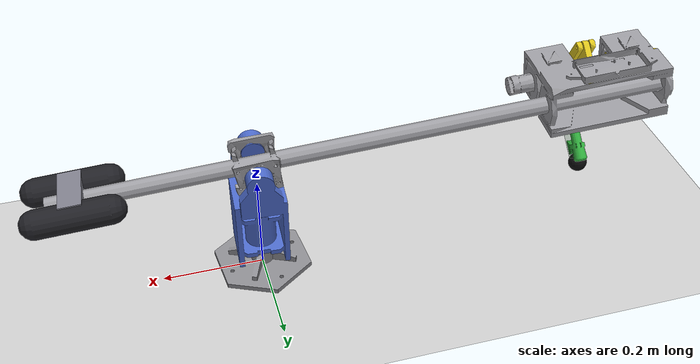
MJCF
<mujoco model="hoppy_cad_physics">
    <compiler angle="radian" meshdir="../assets/meshes/hoppy_official_urdf"/>

    <option gravity="0 0 -9.81" timestep="0.001" integrator="RK4"
            solver="Newton" iterations="50" tolerance="1e-8"/>

    <default>
        <geom type="mesh" contype="0" conaffinity="0" group="1" density="0"/>
    </default>

    <asset>
        <mesh name="base_link" file="base_link.STL"/>
        <mesh name="Link1" file="Link1.STL"/>
        <mesh name="Link2" file="Link2.STL"/>
        <mesh name="Link3" file="Link3.STL"/>
        <mesh name="Link4" file="Link4.STL"/>
    </asset>

    <worldbody>
        <light pos="0.4 -1.5 2.5" dir="-0.2 1 -1.6"/>
        <camera name="main_camera" pos="-0.35 -1.7 0.55" xyaxes="1 0 0 0 0.35 1"/>

        <geom name="floor" type="plane" size="2 2 0.1" rgba="0.8 0.8 0.8 1"
              contype="1" conaffinity="1"
              friction="1.5 0.02 0.001" solref="0.01 1" solimp="0.95 0.99 0.001"/>

        <body name="base_link">
            <inertial pos="0 0 0.0166702" quat="0.5 0.5 -0.5 0.5" mass="0.384125"
                      diaginertia="0.0011789 0.000672971 0.000672971"/>
            <geom mesh="base_link" rgba="0.55 0.55 0.57 1"/>

            <body name="Link1" pos="0 0 0.04">
                <inertial pos="1.19035e-06 -7.23296e-08 0.110977"
                          quat="0.999539 -3.72317e-07 -1.22626e-05 -0.0303481"
                          mass="1.05189" diaginertia="0.0015755 0.00119525 0.000930447"/>
                <!-- Continuous yaw: the gantry spins freely around the base
                     (no hard stop on the real robot nor in the MATLAB sim). -->
                <joint name="joint1" pos="0 0 0" axis="0 0 1"
                       damping="0.02" armature="0.01"/>
                <geom mesh="Link1" rgba="0.30 0.42 0.80 1"/>

                <body name="Link2" pos="-0.00227444 -0.037431 0.21"
                      quat="0.705252 0.707058 0.00831865 -0.0511876">
                    <inertial pos="0.06075 0.00079 -0.00437"
                              quat="0.500001 0.500001 0.499999 0.499999"
                              mass="3.87654" diaginertia="0.13146 0.13021 0.00536"/>
                    <joint name="joint2" pos="0 0 0" axis="0 0 1" range="-0.5 0.5"
                           damping="0.12" armature="0.01"/>
                    <geom mesh="Link2" rgba="0.62 0.62 0.64 1"/>

                    <!-- Counterweight, visual only (its mass is folded into the
                         Link2 inertia). Two weights clamped to the boom near its
                         end, matching the real robot. -->
                    <geom name="cw_clamp" type="box" pos="0.34 0 -0.038" size="0.022 0.03 0.05"
                          contype="0" conaffinity="0" density="0" rgba="0.50 0.50 0.55 1"/>
                    <geom name="cw_1" type="capsule" fromto="0.27 0 0.007 0.41 0 0.007"
                          size="0.028" contype="0" conaffinity="0" density="0" rgba="0.13 0.13 0.15 1"/>
                    <geom name="cw_2" type="capsule" fromto="0.27 0 -0.083 0.41 0 -0.083"
                          size="0.028" contype="0" conaffinity="0" density="0" rgba="0.13 0.13 0.15 1"/>

                    <body name="Link3" pos="-0.6585 0 0.0425"
                          quat="0.677009 -0.204104 -0.677009 0.204104">
                        <inertial pos="0.00864428 -0.0327981 0.0561207"
                                  quat="0.511267 0.498647 -0.497438 0.492456"
                                  mass="0.332207" diaginertia="0.000345397 0.000299821 7.12146e-05"/>
                        <joint name="joint3" pos="0 0 0" axis="0 0 1" range="-0.5 0.9"
                               damping="0.140" armature="0.00507"/>
                        <geom mesh="Link3" rgba="0.90 0.80 0.12 1"/>

                        <body name="Link4" pos="0 -0.1 0.0095"
                              quat="0 -0.288647 -0.957436 0">
                            <inertial pos="-0.0162703 -0.0747425 -0.0260399"
                                      quat="0.285014 0.647037 -0.285746 0.646884"
                                      mass="0.172793" diaginertia="0.000170791 0.000165707 3.2109e-05"/>
                            <joint name="joint4" pos="0 0 0" axis="0 0 -1" range="-1.3 0.4"
                                   damping="0.160" armature="0.00581"
                                   stiffness="1.0" springref="0"/>
                            <geom mesh="Link4" rgba="0.20 0.70 0.25 1"/>
                            <geom name="lower_leg_collision" type="capsule"
                                  fromto="-0.0896 0.0163 -0.0072 0.0240 -0.1820 -0.0274" size="0.015"
                                  contype="1" conaffinity="1"
                                  friction="1.5 0.02 0.001" solref="0.01 1" solimp="0.95 0.99 0.001"
                                  rgba="0.05 0.35 0.08 0.18"/>

                            <geom name="foot" type="sphere" pos="0.0240 -0.1820 -0.0274"
                                  size="0.02" contype="1" conaffinity="1"
                                  friction="1.5 0.02 0.001" solref="0.01 1" solimp="0.95 0.99 0.001"
                                  rgba="0.05 0.05 0.05 1"/>
                            <site name="foot_site" pos="0.0240 -0.1820 -0.0274" size="0.01" rgba="1 0 0 1"/>
                        </body>
                    </body>
                </body>
            </body>
        </body>
    </worldbody>

    <actuator>
        <motor name="hip_motor" joint="joint3" gear="1" ctrllimited="true" ctrlrange="-12.2 12.2"/>
        <motor name="knee_motor" joint="joint4" gear="1" ctrllimited="true" ctrlrange="-13 13"/>
    </actuator>

    <keyframe>
        <key name="stand" qpos="0 0.06 0 0"/>
    </keyframe>
</mujoco>
